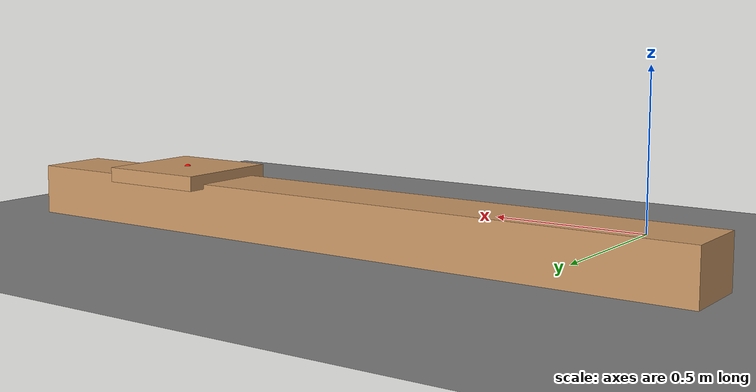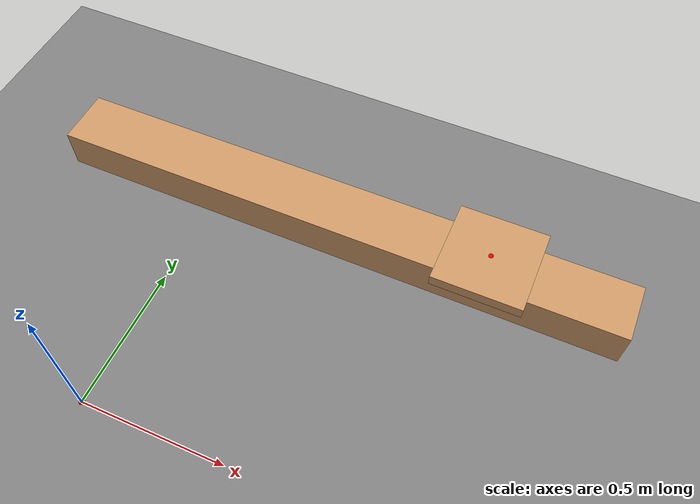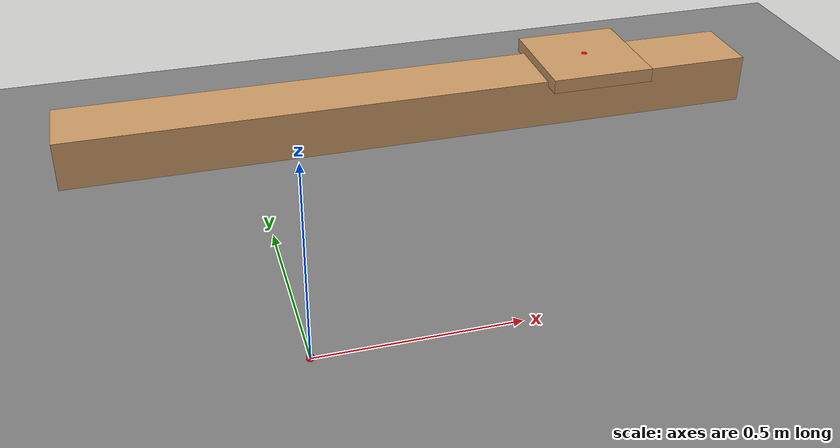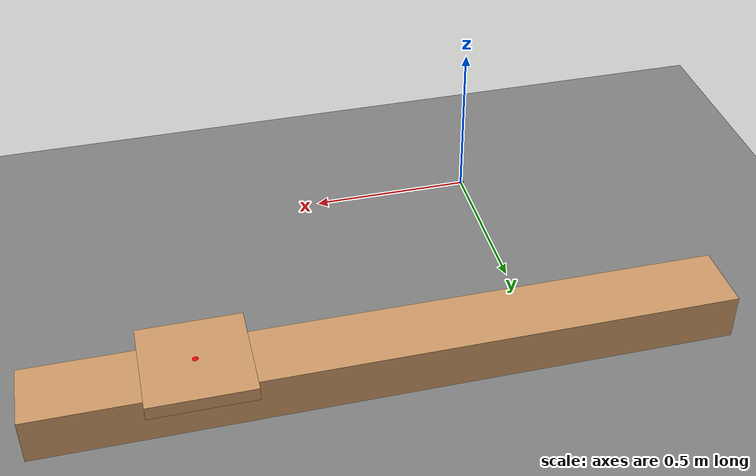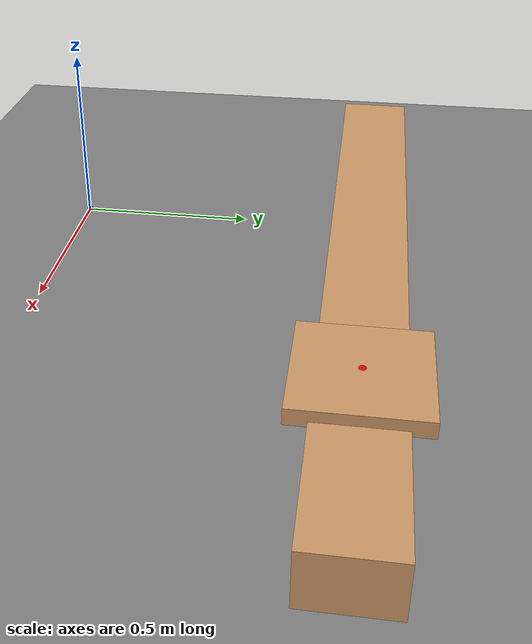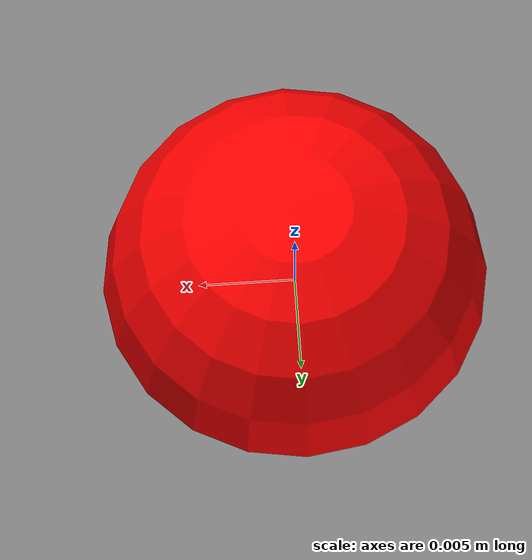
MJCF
<mujoco model="Linear Axis">
  <compiler angle="radian"/>

  <option timestep="0.001" integrator="implicitfast" jacobian="dense">
    <flag multiccd="enable"/>
  </option>

  <size nkey="1"/>

  <visual>
    <global azimuth="-120" elevation="-20"/>
    <quality shadowsize="2048"/>
    <headlight ambient="0.3 0.3 0.3" diffuse="0.6 0.6 0.6" specular="0.1 0.1 0.1"/>
  </visual>

  <statistic meansize="0.03" extent="0.3" center="0.3 0 0"/>

  <default>
    <default class="/"/>
    <default class="lab/"/>
    <default class="cage/main">
      <general ctrlrange="0 1" biastype="affine" gainprm="2000" biasprm="0 -2000 -200"/>
      <default class="cage/iiwa">
        <material shininess="0.25"/>
        <site size="0.001 0.005 0.005" group="4" rgba="1 0 0 1"/>
        <general ctrlrange="0 0"/>
      </default>
      <default class="cage/slider"/>
      <default class="cage/linaxis">
        <material shininess="0.25"/>
      </default>
      <default class="cage/cage_class">
        <material shininess="0.25"/>
        <default class="cage/visual">
          <geom type="mesh" contype="0" conaffinity="0" group="2" material="cage/gray"/>
        </default>
        <default class="cage/collision">
          <geom group="0"/>
        </default>
      </default>
    </default>
  </default>

  <asset>
    <texture type="2d" name="cage/texplane" builtin="checker" mark="cross" rgb1="0.2 0.3 0.4" rgb2="0.1 0.15 0.2" markrgb="0.8 0.8 0.8" width="512" height="512"/>
    <texture type="2d" name="cage/groundplane" builtin="checker" mark="edge" rgb1="1 1 1" rgb2="1 1 1" markrgb="1 1 1" width="300" height="300"/>
    <material name="cage/metal" class="cage/main" rgba="0.58 0.58 0.58 1"/>
    <material name="cage/green" class="cage/main" rgba="0 1 0 1"/>
    <material name="cage/silicone" class="cage/main" rgba="0.1882 0.1882 0.1882 1"/>
    <material name="cage/black" class="cage/main" rgba="0.149 0.149 0.149 1"/>
    <material name="cage/wood" class="cage/main" rgba="0.56 0.37 0.29 1"/>
    <material name="cage/gray" class="cage/cage_class" rgba="0.4 0.4 0.4 1"/>
    <material name="cage/MatGnd" class="cage/main" specular="0.1" shininess="0.3" reflectance="0.1" rgba="0.1 0.1 0.1 0.7"/>
    <material name="cage/alu" class="cage/linaxis" rgba="0.4 0.4 0.4 1"/>
    <material name="cage/matplane" class="cage/main" texture="cage/texplane" texuniform="true" reflectance="0.3"/>
    <material name="cage/groundplane" class="cage/main" texture="cage/groundplane" texuniform="true" texrepeat="5 5" reflectance="0.2"/>
  </asset>

  <worldbody>
    <body name="ground">
      <site name="ground_site_attach" class="/" pos="0 0 0"/>
      <body name="lab/">
        <geom name="lab/ground" class="lab/" size="0 0 1" type="plane"/>
        <site name="lab/ground_attach" class="lab/" pos="0 0 0" size="0.01" rgba="1 0 0 1"/>
        <light name="lab//unnamed_light_0" class="lab/" pos="0 0 1.5" dir="0 0 -1" directional="true"/>
      </body>
    </body>
    <body name="linear_axis">
      <site name="linear_axis_site_attach" class="/" pos="0 0 0"/>
      <body name="cage/">
        <body name="cage//unnamed_body_0" quat="0.707107 0.707107 0 0">
          <body name="cage/linear_axis_right" childclass="cage/linaxis" pos="-0.4755 0.1262 -0.879" quat="0.707107 0 0.707107 0">
            <inertial pos="0 0 0" mass="100" diaginertia="166667 166667 166667"/>
            <joint name="cage/x_right" class="cage/slider" pos="0 0 0" axis="-1 0 0" type="slide" ref="0.193" range="0.41 1.26"/>
            <geom name="cage/collision_linear_axis_right" size="0.1 0.07 1" pos="0 0 0.95" type="box" group="0" rgba="0.8 0.6 0.4 1"/>
            <body name="cage/offset_zeroing_right" pos="0 0 1.35">
              <body name="cage/robot_plate_right" pos="0 0.0468 0.128" quat="0 0 1 0">
                <inertial pos="0 0 0" mass="100" diaginertia="166667 166667 166667"/>
                <joint name="cage/y_right" class="cage/slider" pos="0 0 0" axis="0 0 1" type="slide" ref="0.4415" range="0.26 1.665"/>
                <geom name="cage/collision_robot_plate_right" size="0.15 0.02 0.15" pos="0 0.03 0" type="box" group="0" rgba="0.8 0.6 0.4 1"/>
                <body name="cage/base_right" childclass="cage/iiwa" pos="0 0.0447 0" quat="0.5 -0.5 -0.5 -0.5">
                  <site name="cage/robot_attach_right" pos="0 0 0" size="0.01" group="0"/>
                  <site name="end_effector"/>
                </body>
              </body>
            </body>
          </body>
        </body>
      </body>
    </body>
  </worldbody>

  <actuator>
    <general name="cage/actuatorY_right" class="cage/slider" joint="cage/y_right" ctrlrange="-400 400" biasprm="0 0 -2000"/>
    <general name="cage/actuatorX_right" class="cage/slider" joint="cage/x_right" ctrlrange="-400 400" biasprm="0 0 -2000"/>
  </actuator>
</mujoco>
